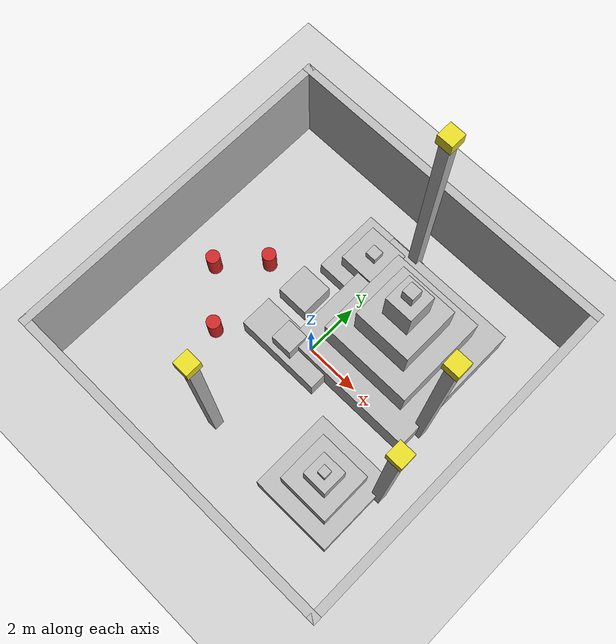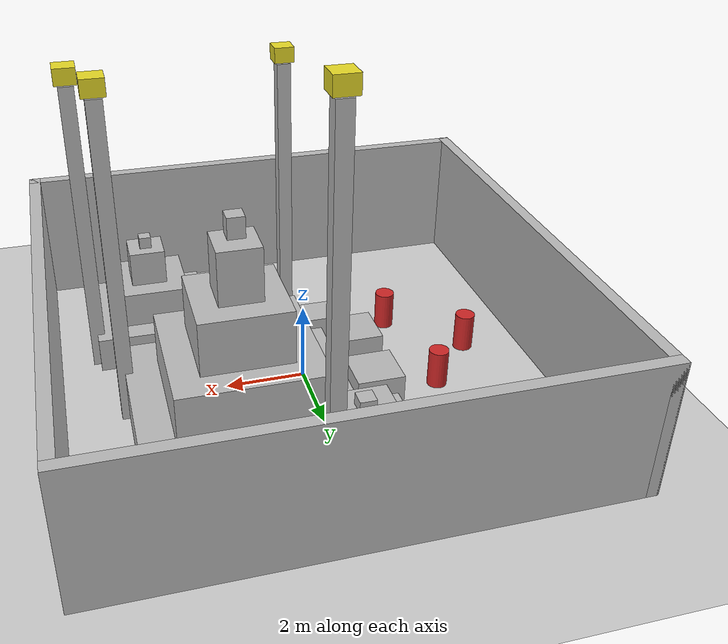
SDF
<?xml version="1.0"?>
<!-- Egyptian Pyramid Desert — Zero-Shot Evaluation -->
<sdf version="1.6">
  <world name="egypt_desert">

  <physics type="ode">
    <max_step_size>0.01</max_step_size>
    <real_time_factor>1</real_time_factor>
    <real_time_update_rate>100</real_time_update_rate>
    <ode>
      <solver><type>quick</type><iters>50</iters><sor>1.3</sor></solver>
      <constraints><cfm>0</cfm><erp>0.2</erp>
        <contact_max_correcting_vel>100</contact_max_correcting_vel>
        <contact_surface_layer>0.001</contact_surface_layer>
      </constraints>
    </ode>
  </physics>

  <scene><ambient>0.50 0.35 0.10 1.0</ambient><background>0.62 0.46 0.18 1.0</background><shadows>false</shadows><grid>false</grid><fog><color>0.80 0.65 0.35 1.0</color><type>linear</type><start>10</start><end>22</end><density>0.05</density></fog></scene>

  <light type="directional" name="golden_sun"><cast_shadows>false</cast_shadows><pose>0 0 20 0 0 0</pose><diffuse>1.00 0.82 0.45 1.0</diffuse><specular>0.40 0.25 0.08 1.0</specular><direction>-0.35 0.20 -0.90</direction><attenuation><range>1000</range><constant>0.9</constant><linear>0.01</linear><quadratic>0.001</quadratic></attenuation></light>
  <light type="directional" name="sky_fill"><cast_shadows>false</cast_shadows><pose>0 0 20 0 0 0</pose><diffuse>0.22 0.20 0.32 1.0</diffuse><specular>0 0 0 1</specular><direction>0.10 -0.05 -1.00</direction><attenuation><range>1000</range><constant>1.0</constant><linear>0.0</linear><quadratic>0.0</quadratic></attenuation></light>

  <model name="ground_plane"><static>true</static><pose>0 0 0 0 0 0</pose><link name="link"><collision name="c"><geometry><plane><normal>0 0 1</normal><size>26 26</size></plane></geometry><surface><friction><ode><mu>0.65</mu><mu2>0.65</mu2></ode></friction></surface></collision><visual name="v"><geometry><plane><normal>0 0 1</normal><size>26 26</size></plane></geometry>
          <material><script><uri>file:///home/anon/ros2_ws/src/safe_drl_nav/safe_drl_nav/sim_assets/materials/scripts/custom.material</uri><name>Custom/Sand</name></script></material>
</visual></link></model>

  <model name="bnd_n"><static>true</static><pose>0 6.15 1.75 0 0 0</pose><link name="link"><collision name="c"><geometry><box><size>12.600000000000001 0.3 3.5</size></box></geometry></collision><visual name="v"><geometry><box><size>12.600000000000001 0.3 3.5</size></box></geometry>
          <material><script><uri>file:///home/anon/ros2_ws/src/safe_drl_nav/safe_drl_nav/sim_assets/materials/scripts/custom.material</uri><name>Custom/Sand</name></script></material>
</visual></link></model>

  <model name="bnd_s"><static>true</static><pose>0 -6.15 1.75 0 0 0</pose><link name="link"><collision name="c"><geometry><box><size>12.600000000000001 0.3 3.5</size></box></geometry></collision><visual name="v"><geometry><box><size>12.600000000000001 0.3 3.5</size></box></geometry>
          <material><script><uri>file:///home/anon/ros2_ws/src/safe_drl_nav/safe_drl_nav/sim_assets/materials/scripts/custom.material</uri><name>Custom/Sand</name></script></material>
</visual></link></model>

  <model name="bnd_e"><static>true</static><pose>6.15 0 1.75 0 0 0</pose><link name="link"><collision name="c"><geometry><box><size>0.3 12.600000000000001 3.5</size></box></geometry></collision><visual name="v"><geometry><box><size>0.3 12.600000000000001 3.5</size></box></geometry>
          <material><script><uri>file:///home/anon/ros2_ws/src/safe_drl_nav/safe_drl_nav/sim_assets/materials/scripts/custom.material</uri><name>Custom/Sand</name></script></material>
</visual></link></model>

  <model name="bnd_w"><static>true</static><pose>-6.15 0 1.75 0 0 0</pose><link name="link"><collision name="c"><geometry><box><size>0.3 12.600000000000001 3.5</size></box></geometry></collision><visual name="v"><geometry><box><size>0.3 12.600000000000001 3.5</size></box></geometry>
          <material><script><uri>file:///home/anon/ros2_ws/src/safe_drl_nav/safe_drl_nav/sim_assets/materials/scripts/custom.material</uri><name>Custom/Sand</name></script></material>
</visual></link></model>

  <model name="pyr_l1"><static>true</static><pose>2.0 2.0 0.65 0 0 0</pose><link name="link"><collision name="c"><geometry><box><size>5.0 5.0 1.3</size></box></geometry></collision><visual name="v"><geometry><box><size>5.0 5.0 1.3</size></box></geometry>
          <material><script><uri>file:///home/anon/ros2_ws/src/safe_drl_nav/safe_drl_nav/sim_assets/materials/scripts/custom.material</uri><name>Custom/Sand</name></script></material>
</visual></link></model>

  <model name="pyr_l2"><static>true</static><pose>2.0 2.0 1.95 0 0 0</pose><link name="link"><collision name="c"><geometry><box><size>3.4 3.4 1.3</size></box></geometry></collision><visual name="v"><geometry><box><size>3.4 3.4 1.3</size></box></geometry>
          <material><script><uri>file:///home/anon/ros2_ws/src/safe_drl_nav/safe_drl_nav/sim_assets/materials/scripts/custom.material</uri><name>Custom/Sand</name></script></material>
</visual></link></model>

  <model name="pyr_l3"><static>true</static><pose>2.0 2.0 3.25 0 0 0</pose><link name="link"><collision name="c"><geometry><box><size>2.1 2.1 1.3</size></box></geometry></collision><visual name="v"><geometry><box><size>2.1 2.1 1.3</size></box></geometry>
          <material><script><uri>file:///home/anon/ros2_ws/src/safe_drl_nav/safe_drl_nav/sim_assets/materials/scripts/custom.material</uri><name>Custom/Sand</name></script></material>
</visual></link></model>

  <model name="pyr_l4"><static>true</static><pose>2.0 2.0 4.55 0 0 0</pose><link name="link"><collision name="c"><geometry><box><size>1.0 1.0 1.3</size></box></geometry></collision><visual name="v"><geometry><box><size>1.0 1.0 1.3</size></box></geometry>
          <material><script><uri>file:///home/anon/ros2_ws/src/safe_drl_nav/safe_drl_nav/sim_assets/materials/scripts/custom.material</uri><name>Custom/Sand</name></script></material>
</visual></link></model>

  <model name="pyr_l5"><static>true</static><pose>2.0 2.0 5.55 0 0 0</pose><link name="link"><collision name="c"><geometry><box><size>0.4 0.4 0.5</size></box></geometry></collision><visual name="v"><geometry><box><size>0.4 0.4 0.5</size></box></geometry>
          <material><script><uri>file:///home/anon/ros2_ws/src/safe_drl_nav/safe_drl_nav/sim_assets/materials/scripts/custom.material</uri><name>Custom/Sand</name></script></material>
</visual></link></model>

  <model name="pyr2_l1"><static>true</static><pose>3.5 -3.0 0.45 0 0 0</pose><link name="link"><collision name="c"><geometry><box><size>3.0 3.0 0.9</size></box></geometry></collision><visual name="v"><geometry><box><size>3.0 3.0 0.9</size></box></geometry>
          <material><script><uri>file:///home/anon/ros2_ws/src/safe_drl_nav/safe_drl_nav/sim_assets/materials/scripts/custom.material</uri><name>Custom/Sand</name></script></material>
</visual></link></model>

  <model name="pyr2_l2"><static>true</static><pose>3.5 -3.0 1.35 0 0 0</pose><link name="link"><collision name="c"><geometry><box><size>1.9 1.9 0.9</size></box></geometry></collision><visual name="v"><geometry><box><size>1.9 1.9 0.9</size></box></geometry>
          <material><script><uri>file:///home/anon/ros2_ws/src/safe_drl_nav/safe_drl_nav/sim_assets/materials/scripts/custom.material</uri><name>Custom/Sand</name></script></material>
</visual></link></model>

  <model name="pyr2_l3"><static>true</static><pose>3.5 -3.0 2.25 0 0 0</pose><link name="link"><collision name="c"><geometry><box><size>0.9 0.9 0.9</size></box></geometry></collision><visual name="v"><geometry><box><size>0.9 0.9 0.9</size></box></geometry>
          <material><script><uri>file:///home/anon/ros2_ws/src/safe_drl_nav/safe_drl_nav/sim_assets/materials/scripts/custom.material</uri><name>Custom/Sand</name></script></material>
</visual></link></model>

  <model name="pyr2_l4"><static>true</static><pose>3.5 -3.0 2.85 0 0 0</pose><link name="link"><collision name="c"><geometry><box><size>0.3 0.3 0.3</size></box></geometry></collision><visual name="v"><geometry><box><size>0.3 0.3 0.3</size></box></geometry>
          <material><script><uri>file:///home/anon/ros2_ws/src/safe_drl_nav/safe_drl_nav/sim_assets/materials/scripts/custom.material</uri><name>Custom/Sand</name></script></material>
</visual></link></model>

  <model name="pyr3_l1"><static>true</static><pose>-0.5 3.5 0.35 0 0 0</pose><link name="link"><collision name="c"><geometry><box><size>2.5 2.5 0.7</size></box></geometry></collision><visual name="v"><geometry><box><size>2.5 2.5 0.7</size></box></geometry>
          <material><script><uri>file:///home/anon/ros2_ws/src/safe_drl_nav/safe_drl_nav/sim_assets/materials/scripts/custom.material</uri><name>Custom/Sand</name></script></material>
</visual></link></model>

  <model name="pyr3_l2"><static>true</static><pose>-0.5 3.5 1.05 0 0 0</pose><link name="link"><collision name="c"><geometry><box><size>1.5 1.5 0.7</size></box></geometry></collision><visual name="v"><geometry><box><size>1.5 1.5 0.7</size></box></geometry>
          <material><script><uri>file:///home/anon/ros2_ws/src/safe_drl_nav/safe_drl_nav/sim_assets/materials/scripts/custom.material</uri><name>Custom/Sand</name></script></material>
</visual></link></model>

  <model name="pyr3_l3"><static>true</static><pose>-0.5 3.5 1.6 0 0 0</pose><link name="link"><collision name="c"><geometry><box><size>0.4 0.4 0.3</size></box></geometry></collision><visual name="v"><geometry><box><size>0.4 0.4 0.3</size></box></geometry>
          <material><script><uri>file:///home/anon/ros2_ws/src/safe_drl_nav/safe_drl_nav/sim_assets/materials/scripts/custom.material</uri><name>Custom/Sand</name></script></material>
</visual></link></model>

  <model name="obelisk_0"><static>true</static><pose>0.5 4.5 4.5 0 0 0</pose><link name="link"><collision name="c"><geometry><box><size>0.36 0.36 9.0</size></box></geometry></collision><visual name="v"><geometry><box><size>0.36 0.36 9.0</size></box></geometry>
          <material><script><uri>file:///home/anon/ros2_ws/src/safe_drl_nav/safe_drl_nav/sim_assets/materials/scripts/custom.material</uri><name>Custom/Sand</name></script></material>
</visual></link></model>

  <model name="ob_cap_0"><static>true</static><pose>0.5 4.5 9.25 0 0 0</pose><link name="link"><collision name="c"><geometry><box><size>0.52 0.52 0.4</size></box></geometry></collision><visual name="v"><geometry><box><size>0.52 0.52 0.4</size></box></geometry>
          <material><script><uri>file://media/materials/scripts/gazebo.material</uri><name>Gazebo/Yellow</name></script></material>
</visual></link></model>

  <model name="obelisk_1"><static>true</static><pose>4.5 0.5 4.0 0 0 0</pose><link name="link"><collision name="c"><geometry><box><size>0.36 0.36 8.0</size></box></geometry></collision><visual name="v"><geometry><box><size>0.36 0.36 8.0</size></box></geometry>
          <material><script><uri>file:///home/anon/ros2_ws/src/safe_drl_nav/safe_drl_nav/sim_assets/materials/scripts/custom.material</uri><name>Custom/Sand</name></script></material>
</visual></link></model>

  <model name="ob_cap_1"><static>true</static><pose>4.5 0.5 8.25 0 0 0</pose><link name="link"><collision name="c"><geometry><box><size>0.52 0.52 0.4</size></box></geometry></collision><visual name="v"><geometry><box><size>0.52 0.52 0.4</size></box></geometry>
          <material><script><uri>file://media/materials/scripts/gazebo.material</uri><name>Gazebo/Yellow</name></script></material>
</visual></link></model>

  <model name="obelisk_2"><static>true</static><pose>-0.5 -4.0 3.5 0 0 0</pose><link name="link"><collision name="c"><geometry><box><size>0.36 0.36 7.0</size></box></geometry></collision><visual name="v"><geometry><box><size>0.36 0.36 7.0</size></box></geometry>
          <material><script><uri>file:///home/anon/ros2_ws/src/safe_drl_nav/safe_drl_nav/sim_assets/materials/scripts/custom.material</uri><name>Custom/Sand</name></script></material>
</visual></link></model>

  <model name="ob_cap_2"><static>true</static><pose>-0.5 -4.0 7.25 0 0 0</pose><link name="link"><collision name="c"><geometry><box><size>0.52 0.52 0.4</size></box></geometry></collision><visual name="v"><geometry><box><size>0.52 0.52 0.4</size></box></geometry>
          <material><script><uri>file://media/materials/scripts/gazebo.material</uri><name>Gazebo/Yellow</name></script></material>
</visual></link></model>

  <model name="obelisk_3"><static>true</static><pose>5.0 -2.0 3.75 0 0 0</pose><link name="link"><collision name="c"><geometry><box><size>0.36 0.36 7.5</size></box></geometry></collision><visual name="v"><geometry><box><size>0.36 0.36 7.5</size></box></geometry>
          <material><script><uri>file:///home/anon/ros2_ws/src/safe_drl_nav/safe_drl_nav/sim_assets/materials/scripts/custom.material</uri><name>Custom/Sand</name></script></material>
</visual></link></model>

  <model name="ob_cap_3"><static>true</static><pose>5.0 -2.0 7.75 0 0 0</pose><link name="link"><collision name="c"><geometry><box><size>0.52 0.52 0.4</size></box></geometry></collision><visual name="v"><geometry><box><size>0.52 0.52 0.4</size></box></geometry>
          <material><script><uri>file://media/materials/scripts/gazebo.material</uri><name>Gazebo/Yellow</name></script></material>
</visual></link></model>

  <model name="sphinx_body"><static>true</static><pose>-0.5 -0.5 0.45 0 0 0</pose><link name="link"><collision name="c"><geometry><box><size>3.2 1.2 0.9</size></box></geometry></collision><visual name="v"><geometry><box><size>3.2 1.2 0.9</size></box></geometry>
          <material><script><uri>file:///home/anon/ros2_ws/src/safe_drl_nav/safe_drl_nav/sim_assets/materials/scripts/custom.material</uri><name>Custom/Sand</name></script></material>
</visual></link></model>

  <model name="sphinx_head"><static>true</static><pose>-0.5 -0.5 1.15 0 0 0</pose><link name="link"><collision name="c"><geometry><box><size>0.8 0.8 0.8</size></box></geometry></collision><visual name="v"><geometry><box><size>0.8 0.8 0.8</size></box></geometry>
          <material><script><uri>file:///home/anon/ros2_ws/src/safe_drl_nav/safe_drl_nav/sim_assets/materials/scripts/custom.material</uri><name>Custom/Sand</name></script></material>
</visual></link></model>

  <model name="tomb1"><static>true</static><pose>-1.5 1.2 0.4 0 0 0</pose><link name="link"><collision name="c"><geometry><box><size>1.2 1.2 0.8</size></box></geometry></collision><visual name="v"><geometry><box><size>1.2 1.2 0.8</size></box></geometry>
          <material><script><uri>file:///home/anon/ros2_ws/src/safe_drl_nav/safe_drl_nav/sim_assets/materials/scripts/custom.material</uri><name>Custom/Sand</name></script></material>
</visual></link></model>

  <model name="tomb2"><static>true</static><pose>-1.0 -0.5 0.3 0 0 0</pose><link name="link"><collision name="c"><geometry><box><size>1.0 0.8 0.6</size></box></geometry></collision><visual name="v"><geometry><box><size>1.0 0.8 0.6</size></box></geometry>
          <material><script><uri>file:///home/anon/ros2_ws/src/safe_drl_nav/safe_drl_nav/sim_assets/materials/scripts/custom.material</uri><name>Custom/Sand</name></script></material>
</visual></link></model>

  <model name="wp1"><static>true</static><pose>-2.8 -1.8 0.5 0 0 0</pose><link name="link"><collision name="c"><geometry><cylinder><radius>0.25</radius><length>1.0</length></cylinder></geometry></collision><visual name="v"><geometry><cylinder><radius>0.25</radius><length>1.0</length></cylinder></geometry>
          <material><script><uri>file://media/materials/scripts/gazebo.material</uri><name>Gazebo/Red</name></script></material>
</visual></link></model>

  <model name="wp2"><static>true</static><pose>-4.5 -0.2 0.5 0 0 0</pose><link name="link"><collision name="c"><geometry><cylinder><radius>0.25</radius><length>1.0</length></cylinder></geometry></collision><visual name="v"><geometry><cylinder><radius>0.25</radius><length>1.0</length></cylinder></geometry>
          <material><script><uri>file://media/materials/scripts/gazebo.material</uri><name>Gazebo/Red</name></script></material>
</visual></link></model>

  <model name="wp3"><static>true</static><pose>-3.2 1.2 0.5 0 0 0</pose><link name="link"><collision name="c"><geometry><cylinder><radius>0.25</radius><length>1.0</length></cylinder></geometry></collision><visual name="v"><geometry><cylinder><radius>0.25</radius><length>1.0</length></cylinder></geometry>
          <material><script><uri>file://media/materials/scripts/gazebo.material</uri><name>Gazebo/Red</name></script></material>
</visual></link></model>

  </world>
</sdf>
